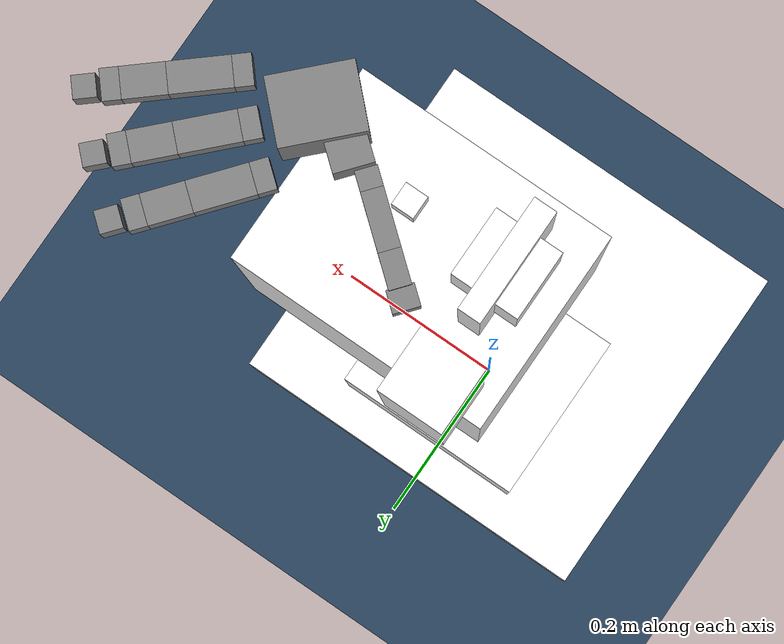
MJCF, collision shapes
<?xml version='1.0' encoding='utf-8'?>
<mujoco model="right_allegro_hand scene">
  <include file="franka_right_hand_box.xml" />

  <statistic center="0 0 0" extent="0.3" />

  <visual>
    <rgba haze="0.15 0.25 0.35 1" />
    <quality shadowsize="8192" />
    <global azimuth="130" elevation="-40" />

  </visual>

  <asset>
    <texture type="skybox" builtin="gradient" rgb1="0.3 0.5 0.7" rgb2="0 0 0" width="512" height="3072" />
    <texture type="2d" name="groundplane" builtin="checker" mark="edge" rgb1="0.2 0.3 0.4" rgb2="0.1 0.2 0.3" markrgb="0.8 0.8 0.8" width="300" height="300" />
    <material name="groundplane" texture="groundplane" texuniform="true" texrepeat="5 5" reflectance="0.2" />

    <texture name="grid" type="2d" builtin="checker" width="512" height="512" rgb1=".1 .2 .3" rgb2=".2 .3 .4"/>
    <material name="grid" texture="grid" texrepeat="1 1" texuniform="true" reflectance=".2"/>

    <mesh name="my_mesh" file="bluelego_convex.stl" scale="1 1 1" />
  </asset>

  <worldbody>
    <light pos="0 0 1" />
    <light pos="0.3 0 1.5" dir="0 0 -1" directional="true" />
    <camera name="top" focal="1.93e-3 1.93e-3" resolution="1280 720" sensorsize="3896e-6 2140e-6"
            pos="0 0 0.6" mode="fixed" quat="1 0 0 0"/>
        <camera name="side" focal="1.93e-3 1.93e-3" resolution="1280 720" sensorsize="3896e-6 2140e-6"
            pos="0 -0.5 0.1" mode="fixed" quat="0.7 0.7 0 0"/>
    <geom name="floor" pos="0 0 0.05" size="0 0 0.05" type="plane" material="grid"  condim="3"/>

  </worldbody>

</mujoco>

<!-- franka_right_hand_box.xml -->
<mujoco model="franka_allegro">
  <compiler angle="radian" meshdir="assets" autolimits="true"/>
  <option integrator="implicitfast"/>

  <default>
    <default class="panda">
      <material specular="0.5" shininess="0.25"/>
      <joint armature="0.1" damping="1" axis="0 0 1" range="-2.8973 2.8973" type="hinge"/>
      <general dyntype="none" biastype="affine" ctrlrange="-2.8973 2.8973" forcerange="-87 87"/>

      <default class="panda/visual">
        <geom type="mesh" contype="0" conaffinity="0" group="2"/>
      </default>

      <!-- Here we define per-link defaults, like in Allegro. -->

   <default class="panda/collision">
        <geom type="box" group="3" material="white"/>

        <default class="link0_collision">
          <geom size="0.10 0.10 0.04" pos="-0.045 0 0.0" />
        </default>

        <default class="link1_collision">
          <geom size="0.2 0.19 0.04" pos="0 -0.03 -0.06"/>
        </default>

        <default class="link2_collision">
          <geom size="0.1 0.05 0.09" pos="0 -0.04 0.03"/>
        </default>

        <default class="link3_collision">
          <geom size="0.03 0.03 0.03" pos="0 0 0"/>
        </default>

        <default class="link4_collision">
          <geom size="0.13 0.13 0.1" pos="0 0 0"/>
        </default>

        <!-- Link5 may have multiple collision boxes -->
        <default class="link5_0_collision">
          <geom size="0.03 0.03 0.1" pos="0 0.1 -0.13"/>
        </default>
        <default class="link5_1_collision">
          <geom size="0.01 0.05 0.05" pos="0 0 0.0"/>
        </default>
        <default class="link5_2_collision">
          <geom size="0.01 0.01 0.01" pos="0 0 0"/>
        </default>

        <default class="link6_collision">
          <geom size="0.03 0.03 0.03" pos="0 0 0"/>
        </default>

        <default class="link7_collision">
          <geom size="0.01 0.01 0.01" pos="0 0 0"/>
        </default>
      </default>

      <site size="0.001" rgba="0.5 0.5 0.5 0.3" group="4"/>

    </default>

    <!-- Allegro right hand defaults remain the same. -->
    <default class="allegro_right">
      <joint armature="0.1" damping="1" axis="0 0 1" range="-2.8973 2.8973" type="hinge"/>
      <position kp="1"/>
      <geom density="800"/>

      <default class="visual">
        <geom type="mesh" contype="0" conaffinity="0" group="2" material="black"/>
        <default class="palm_visual">
          <geom mesh="base_link"/>
        </default>
        <default class="base_visual">
          <geom mesh="link_0.0"/>
        </default>
        <default class="proximal_visual">
          <geom mesh="link_1.0"/>
        </default>
        <default class="medial_visual">
          <geom mesh="link_2.0"/>
        </default>
        <default class="distal_visual">
          <geom mesh="link_3.0"/>
        </default>
        <default class="fingertip_visual">
          <geom pos="0 0 0.0267" material="white" mesh="link_3.0_tip"/>
        </default>
        <default class="thumbtip_visual">
          <geom pos="0 0 0.0423" material="white" mesh="link_15.0_tip"/>
        </default>
      </default>

      <default class="collision">
        <geom group="3" type="box" mass="0.05"/>

        <default class="palm_collision">
          <geom size="0.0304 0.03 0.0375" pos="-0.0093 0 -0.0475"/>
        </default>
        <default class="base_collision">
          <geom size="0.0098 0.01375 0.0082" pos="0 0 0.0082"/>
          <default class="thumb_base_collision">
            <geom size="0.0179 0.017 0.02275" pos="-0.0179 0.009 0.0145"/>
          </default>
        </default>
        <default class="proximal_collision">
          <geom size="0.0098 0.01375 0.027" pos="0 0 0.027"/>
          <default class="thumb_proximal_collision">
            <geom size="0.0098 0.01375 0.00885" pos="0 0 0.00885"/>
          </default>
        </default>
        <default class="medial_collision">
          <geom size="0.0098 0.01375 0.0192" pos="0 0 0.0192"/>
          <default class="thumb_medial_collision">
            <geom size="0.0098 0.01375 0.0257" pos="0 0 0.0257"/>
          </default>
        </default>
        <default class="distal_collision">
          <geom size="0.0098 0.01375 0.008" pos="0 0 0.008"/>
          <default class="thumb_distal_collision">
            <geom size="0.0098 0.01375 0.0157" pos="0 0 0.0157"/>
          </default>
        </default>
        <default class="fingertip_collision">
          <geom  size="0.012 0.01 0.01" pos="0 0 0.029"/>
          <default class="thumbtip_collision">
            <geom  size="0.012 0.01 0.01" pos="0 0 0.04"/>
          </default>
        </default>
      </default>

      <default class="base">

        <joint  range="-0.47 0.47" armature="0.1" damping="1" type="hinge"/>
        <position ctrlrange="-0.47 0.47"/>
      </default>
      <default class="proximal">
        <joint range="-0.196 1.61" armature="0.1" damping="1" type="hinge"/>
        <position ctrlrange="-0.196 1.61"/>
      </default>
      <default class="medial">
        <joint range="-0.174 1.709" armature="0.1" damping="1" type="hinge"/>
        <position ctrlrange="-0.174 1.709"/>
      </default>
      <default class="distal">
        <joint range="-0.227 1.618"   armature="0.1" damping="1" type="hinge"/>
        <position ctrlrange="-0.227 1.618"/>
      </default>
      <default class="thumb_base">
        <joint axis="-1 0 0" range="0.263 1.396"  armature="0.1" damping="1" type="hinge"/>
        <position ctrlrange="0.263 1.396"/>
      </default>
      <default class="thumb_proximal">
        <joint axis="0 0 1" range="-0.105 1.163"   armature="0.1" damping="1" type="hinge"/>
        <position ctrlrange="-0.105 1.163"/>
      </default>
      <default class="thumb_medial">
        <joint range="-0.189 1.644"   armature="0.1" damping="1" type="hinge"/>
        <position ctrlrange="-0.189 1.644"/>
      </default>
      <default class="thumb_distal">
        <joint range="-0.162 1.719"  armature="0.1" damping="1" type="hinge"/>
        <position ctrlrange="-0.162 1.719"/>
      </default>
    </default>
  </default>

  <asset>
    <!-- Materials -->
    <material class="panda" name="white" rgba="1 1 1 1"/>
    <material class="panda" name="off_white" rgba="0.901961 0.921569 0.929412 1"/>
    <material class="panda" name="dark_grey" rgba="0.25 0.25 0.25 1"/>
    <material class="panda" name="green" rgba="0 1 0 1"/>
    <material class="panda" name="light_blue" rgba="0.039216 0.541176 0.780392 1"/>
    <material name="black" rgba="0.2 0.2 0.2 1"/>

    <!-- Collision meshes (no longer used, replaced by boxes) -->
    <mesh name="link0_c" file="link0.stl"/>
    <mesh name="link1_c" file="link1.stl"/>
    <mesh name="link2_c" file="link2.stl"/>
    <mesh name="link3_c" file="link3.stl"/>
    <mesh name="link4_c" file="link4.stl"/>
    <mesh name="link5_c0" file="link5_collision_0.obj"/>
    <mesh name="link5_c1" file="link5_collision_1.obj"/>
    <mesh name="link5_c2" file="link5_collision_2.obj"/>
    <mesh name="link6_c" file="link6.stl"/>
    <mesh name="link7_c" file="link7.stl"/>

    <!-- Visual meshes -->
    <mesh name="link0_0" file="link0_0.obj"/>
    <mesh name="link0_1" file="link0_1.obj"/>
    <mesh name="link0_2" file="link0_2.obj"/>
    <mesh name="link0_3" file="link0_3.obj"/>
    <mesh name="link0_4" file="link0_4.obj"/>
    <mesh name="link0_5" file="link0_5.obj"/>
    <mesh name="link0_7" file="link0_7.obj"/>
    <mesh name="link0_8" file="link0_8.obj"/>
    <mesh name="link0_9" file="link0_9.obj"/>
    <mesh name="link0_10" file="link0_10.obj"/>
    <mesh name="link0_11" file="link0_11.obj"/>
    <mesh name="link1" file="link1.obj"/>
    <mesh name="link2" file="link2.obj"/>
    <mesh name="link3_0" file="link3_0.obj"/>
    <mesh name="link3_1" file="link3_1.obj"/>
    <mesh name="link3_2" file="link3_2.obj"/>
    <mesh name="link3_3" file="link3_3.obj"/>
    <mesh name="link4_0" file="link4_0.obj"/>
    <mesh name="link4_1" file="link4_1.obj"/>
    <mesh name="link4_2" file="link4_2.obj"/>
    <mesh name="link4_3" file="link4_3.obj"/>
    <mesh name="link5_0" file="link5_0.obj"/>
    <mesh name="link5_1" file="link5_1.obj"/>
    <mesh name="link5_2" file="link5_2.obj"/>
    <mesh name="link6_0" file="link6_0.obj"/>
    <mesh name="link6_1" file="link6_1.obj"/>
    <mesh name="link6_2" file="link6_2.obj"/>
    <mesh name="link6_3" file="link6_3.obj"/>
    <mesh name="link6_4" file="link6_4.obj"/>
    <mesh name="link6_5" file="link6_5.obj"/>
    <mesh name="link6_6" file="link6_6.obj"/>
    <mesh name="link6_7" file="link6_7.obj"/>
    <mesh name="link6_8" file="link6_8.obj"/>
    <mesh name="link6_9" file="link6_9.obj"/>
    <mesh name="link6_10" file="link6_10.obj"/>
    <mesh name="link6_11" file="link6_11.obj"/>
    <mesh name="link6_12" file="link6_12.obj"/>
    <mesh name="link6_13" file="link6_13.obj"/>
    <mesh name="link6_14" file="link6_14.obj"/>
    <mesh name="link6_15" file="link6_15.obj"/>
    <mesh name="link6_16" file="link6_16.obj"/>
    <mesh name="link7_0" file="link7_0.obj"/>
    <mesh name="link7_1" file="link7_1.obj"/>
    <mesh name="link7_2" file="link7_2.obj"/>
    <mesh name="link7_3" file="link7_3.obj"/>
    <mesh name="link7_4" file="link7_4.obj"/>
    <mesh name="link7_5" file="link7_5.obj"/>
    <mesh name="link7_6" file="link7_6.obj"/>
    <mesh name="link7_7" file="link7_7.obj"/>

    <!-- Allegro hand meshes -->
    <mesh file="base_link.stl" name="base_link"/>
    <mesh file="hand_link_0.0.stl" name="link_0.0"/>
    <mesh file="hand_link_1.0.stl" name="link_1.0"/>
    <mesh file="hand_link_2.0.stl" name="link_2.0"/>
    <mesh file="hand_link_3.0.stl" name="link_3.0"/>
    <mesh file="hand_link_3.0_tip.stl" name="link_3.0_tip"/>
    <mesh file="hand_link_12.0_right.stl" name="link_12.0_right"/>
    <mesh file="hand_link_13.0.stl" name="link_13.0"/>
    <mesh file="hand_link_14.0.stl" name="link_14.0"/>
    <mesh file="hand_link_15.0.stl" name="link_15.0"/>
    <mesh file="hand_link_15.0_tip.stl" name="link_15.0_tip"/>
  </asset>

  <worldbody>
    <!-- Franka robot up to link7 -->
    <body name="link0" pos='0 0 0.05' childclass="panda">
      <inertial mass="0.629769" pos="-0.041018 -0.00014 0.049974"
                fullinertia="0.00315 0.00388 0.004285 8.2904e-7 0.00015 8.2299e-6"/>

      <!-- Visual geoms unchanged -->
      <geom mesh="link0_0" material="off_white" class="panda/visual"/>
      <geom mesh="link0_1" material="dark_grey" class="panda/visual"/>
      <geom mesh="link0_2" material="off_white" class="panda/visual"/>
      <geom mesh="link0_3" material="dark_grey" class="panda/visual"/>
      <geom mesh="link0_4" material="off_white" class="panda/visual"/>
      <geom mesh="link0_5" material="dark_grey" class="panda/visual"/>
      <geom mesh="link0_7" material="white" class="panda/visual"/>
      <geom mesh="link0_8" material="white" class="panda/visual"/>
      <geom mesh="link0_9" material="dark_grey" class="panda/visual"/>
      <geom mesh="link0_10" material="off_white" class="panda/visual"/>
      <geom mesh="link0_11" material="white" class="panda/visual"/>

      <!-- Collision now references link0_collision. -->
      <geom class="link0_collision"/>

      <body name="link1" pos="0 0 0.333">
        <inertial mass="4.970684" pos="0.003875 0.002081 -0.04762"
                  fullinertia="0.70337 0.70661 0.0091170 -0.00013900 0.0067720 0.019169"/>
        <joint name="joint1"/>

        <geom material="white" mesh="link1" class="panda/visual"/>
        <!-- Collision for link1 -->
        <geom class="link1_collision"/>

        <body name="link2" quat="1 -1 0 0">
          <inertial mass="0.646926" pos="-0.003141 -0.02872 0.003495"
                    fullinertia="0.0079620 2.8110e-2 2.5995e-2 -3.925e-3 1.0254e-2 7.04e-4"/>
          <joint name="joint2" range="-1.7628 1.7628"/>
          <geom material="white" mesh="link2" class="panda/visual"/>
          <geom class="link2_collision"/>

          <body name="link3" pos="0 -0.316 0" quat="1 1 0 0">
            <joint name="joint3"/>
            <inertial mass="3.228604" pos="2.7518e-2 3.9252e-2 -6.6502e-2"
                      fullinertia="3.7242e-2 3.6155e-2 1.083e-2 -4.761e-3 -1.1396e-2 -1.2805e-2"/>
            <geom mesh="link3_0" material="white" class="panda/visual"/>
            <geom mesh="link3_1" material="white" class="panda/visual"/>
            <geom mesh="link3_2" material="white" class="panda/visual"/>
            <geom mesh="link3_3" material="dark_grey" class="panda/visual"/>
            <geom class="link3_collision"/>

            <body name="link4" pos="0.0825 0 0" quat="1 1 0 0">
              <inertial mass="3.587895" pos="-5.317e-2 1.04419e-1 2.7454e-2"
                        fullinertia="2.5853e-2 1.9552e-2 2.8323e-2 7.796e-3 -1.332e-3 8.641e-3"/>
              <joint name="joint4" range="-3.0718 -0.0698"/>
              <geom mesh="link4_0" material="white" class="panda/visual"/>
              <geom mesh="link4_1" material="white" class="panda/visual"/>
              <geom mesh="link4_2" material="dark_grey" class="panda/visual"/>
              <geom mesh="link4_3" material="white" class="panda/visual"/>
              <geom class="link4_collision"/>

              <body name="link5" pos="-0.0825 0.384 0" quat="1 -1 0 0">
                <inertial mass="1.225946" pos="-1.1953e-2 4.1065e-2 -3.8437e-2"
                          fullinertia="3.5549e-2 2.9474e-2 8.627e-3 -2.117e-3 -4.037e-3 2.29e-4"/>
                <joint name="joint5"/>

                <!-- Visual -->
                <geom mesh="link5_0" material="dark_grey" class="panda/visual"/>
                <geom mesh="link5_1" material="white" class="panda/visual"/>
                <geom mesh="link5_2" material="white" class="panda/visual"/>

                <!-- Instead of three repeated geoms, each references its own default -->
                <geom class="link5_0_collision"/>
                <geom class="link5_1_collision"/>
                <geom class="link5_2_collision"/>

                <body name="link6" quat="1 1 0 0">
                  <inertial mass="1.666555" pos="6.0149e-2 -1.4117e-2 -1.0517e-2"
                            fullinertia="1.964e-3 4.354e-3 5.433e-3 1.09e-4 -1.158e-3 3.41e-4"/>
                  <joint name="joint6" range="-0.0175 3.7525"/>

                  <!-- Visual geoms -->
                  <geom mesh="link6_0" material="off_white" class="panda/visual"/>
                  <geom mesh="link6_1" material="white" class="panda/visual"/>
                  <geom mesh="link6_2" material="dark_grey" class="panda/visual"/>
                  <geom mesh="link6_3" material="white" class="panda/visual"/>
                  <geom mesh="link6_4" material="white" class="panda/visual"/>
                  <geom mesh="link6_5" material="white" class="panda/visual"/>
                  <geom mesh="link6_6" material="white" class="panda/visual"/>
                  <geom mesh="link6_7" material="light_blue" class="panda/visual"/>
                  <geom mesh="link6_8" material="light_blue" class="panda/visual"/>
                  <geom mesh="link6_9" material="dark_grey" class="panda/visual"/>
                  <geom mesh="link6_10" material="dark_grey" class="panda/visual"/>
                  <geom mesh="link6_11" material="white" class="panda/visual"/>
                  <geom mesh="link6_12" material="green" class="panda/visual"/>
                  <geom mesh="link6_13" material="white" class="panda/visual"/>
                  <geom mesh="link6_14" material="dark_grey" class="panda/visual"/>
                  <geom mesh="link6_15" material="dark_grey" class="panda/visual"/>
                  <geom mesh="link6_16" material="white" class="panda/visual"/>

                  <!-- Collision for link6 -->
                  <geom class="link6_collision"/>

                  <body name="link7" pos="0.088 0 0" quat="1 1 0 0">
                    <inertial mass="0.735522"
                              pos="0.010517 -0.004252 0.061597"
                              fullinertia="0.012516 0.010027 0.004815 -0.000428 -0.001196 -0.000741"/>
                    <joint name="joint7"/>
                    <geom mesh="link7_0" material="white" class="panda/visual"/>
                    <geom mesh="link7_1" material="dark_grey" class="panda/visual"/>
                    <geom mesh="link7_2" material="dark_grey" class="panda/visual"/>
                    <geom mesh="link7_3" material="dark_grey" class="panda/visual"/>
                    <geom mesh="link7_4" material="dark_grey" class="panda/visual"/>
                    <geom mesh="link7_5" material="dark_grey" class="panda/visual"/>
                    <geom mesh="link7_6" material="dark_grey" class="panda/visual"/>
                    <geom mesh="link7_7" material="white" class="panda/visual"/>
                    <geom class="link7_collision"/>

                    <!-- Allegro hand as child of link7 -->
                    <body name="allegro_hand"
                          pos="0.15 0.0 0.14"
                          quat="-0.27328151 -0.65059802 0.27328151 -0.65059802"
                          childclass="allegro_right">
                      <geom class="palm_visual" mesh="base_link"/>
                      <geom class="palm_collision"/>

                      <!-- FF Finger -->
                      <body name="ff_base" pos="0 0.0435 -0.001542" quat="0.999048 -0.0436194 0 0">
                        <joint name="ffj0" class="base" />
                        <geom class="base_visual" />
                        <geom class="base_collision" />
                        <body name="ff_proximal" pos="0 0 0.0164">
                          <joint name="ffj1" class="proximal" />
                          <geom class="proximal_visual" />
                          <geom class="proximal_collision" />
                          <body name="ff_medial" pos="0 0 0.054">
                            <joint name="ffj2" class="medial" />
                            <geom class="medial_visual" />
                            <geom class="medial_collision" />
                            <body name="ff_distal" pos="0 0 0.0384">
                              <joint name="ffj3" class="distal" />
                              <geom class="distal_visual" />
                              <geom class="distal_collision" />
                              <body name="ff_tip">
                                <geom class="fingertip_visual" />
                                <geom class="fingertip_collision" />
                              </body>
                            </body>
                          </body>
                        </body>
                      </body>

                      <!-- MF Finger -->
                      <body name="mf_base" pos="0 0 0.0007">
                        <joint name="mfj0" class="base" />
                        <geom class="base_visual" />
                        <geom class="base_collision" />
                        <body name="mf_proximal" pos="0 0 0.0164">
                          <joint name="mfj1" class="proximal" />
                          <geom class="proximal_visual" />
                          <geom class="proximal_collision" />
                          <body name="mf_medial" pos="0 0 0.054">
                            <joint name="mfj2" class="medial" />
                            <geom class="medial_visual" />
                            <geom class="medial_collision" />
                            <body name="mf_distal" pos="0 0 0.0384">
                              <joint name="mfj3" class="distal" />
                              <geom class="distal_visual" />
                              <geom class="distal_collision" />
                              <body name="mf_tip">
                                <geom class="fingertip_visual" />
                                <geom class="fingertip_collision" />
                              </body>
                            </body>
                          </body>
                        </body>
                      </body>

                      <!-- RF Finger -->
                      <body name="rf_base" pos="0 -0.0435 -0.001542" quat="0.999048 0.0436194 0 0">
                        <joint name="rfj0" class="base" />
                        <geom class="base_visual" />
                        <geom class="base_collision" />
                        <body name="rf_proximal" pos="0 0 0.0164">
                          <joint name="rfj1" class="proximal" />
                          <geom class="proximal_visual" />
                          <geom class="proximal_collision" />
                          <body name="rf_medial" pos="0 0 0.054">
                            <joint name="rfj2" class="medial" />
                            <geom class="medial_visual" />
                            <geom class="medial_collision" />
                            <body name="rf_distal" pos="0 0 0.0384">
                              <joint name="rfj3" class="distal" />
                              <geom class="distal_visual" />
                              <geom class="distal_collision" />
                              <body name="rf_tip">
                                <geom class="fingertip_visual" />
                                <geom class="fingertip_collision" />
                              </body>
                            </body>
                          </body>
                        </body>
                      </body>

                      <!-- Thumb Finger -->
                      <body name="th_base" pos="-0.0182 0.019333 -0.045987" quat="0.477714 -0.521334 -0.521334 -0.477714">
                        <joint name="thj0" class="thumb_base" />
                        <geom class="visual" mesh="link_12.0_right" />
                        <geom class="thumb_base_collision" />
                        <body name="th_proximal" pos="-0.027 0.005 0.0399">
                          <joint name="thj1" class="thumb_proximal" />
                          <geom class="visual" mesh="link_13.0" />
                          <geom class="thumb_proximal_collision" />
                          <body name="th_medial" pos="0 0 0.0177">
                            <joint name="thj2" class="thumb_medial" />
                            <geom class="visual" mesh="link_14.0" />
                            <geom class="thumb_medial_collision" />
                            <body name="th_distal" pos="0 0 0.0514">
                              <joint name="thj3" class="thumb_distal" />
                              <geom class="visual" mesh="link_15.0" />
                              <geom class="thumb_distal_collision" />
                              <body name="th_tip">
                                <geom class="thumbtip_visual" />
                                <geom class="thumbtip_collision" />
                              </body>
                            </body>
                          </body>
                        </body>
                      </body>
                    </body><!-- /allegro_hand -->
                  </body><!-- /link7 -->
                </body><!-- /link6 -->
              </body><!-- /link5 -->
            </body><!-- /link4 -->
          </body><!-- /link3 -->
        </body><!-- /link2 -->
      </body><!-- /link1 -->
    </body><!-- /link0 -->

  </worldbody>

  <actuator>
    <general class="panda" name="actuator1" joint="joint1" gainprm="4500" biasprm="0 -4500 -450"/>
    <general class="panda" name="actuator2" joint="joint2" gainprm="4500" biasprm="0 -4500 -450"
      ctrlrange="-1.7628 1.7628"/>
    <general class="panda" name="actuator3" joint="joint3" gainprm="3500" biasprm="0 -3500 -350"/>
    <general class="panda" name="actuator4" joint="joint4" gainprm="3500" biasprm="0 -3500 -350"
      ctrlrange="-3.0718 -0.0698"/>
    <general class="panda" name="actuator5" joint="joint5" gainprm="2000" biasprm="0 -2000 -200" forcerange="-12 12"/>
    <general class="panda" name="actuator6" joint="joint6" gainprm="2000" biasprm="0 -2000 -200" forcerange="-12 12"
      ctrlrange="-0.0175 3.7525"/>
    <general class="panda" name="actuator7" joint="joint7" gainprm="2000" biasprm="0 -2000 -200" forcerange="-12 12"/>

    <position name="ffa0" joint="ffj0" class="base" />
    <position name="ffa1" joint="ffj1" class="proximal" />
    <position name="ffa2" joint="ffj2" class="medial" />
    <position name="ffa3" joint="ffj3" class="distal" />

    <position name="mfa0" joint="mfj0" class="base" />
    <position name="mfa1" joint="mfj1" class="proximal" />
    <position name="mfa2" joint="mfj2" class="medial" />
    <position name="mfa3" joint="mfj3" class="distal" />

    <position name="rfa0" joint="rfj0" class="base" />
    <position name="rfa1" joint="rfj1" class="proximal" />
    <position name="rfa2" joint="rfj2" class="medial" />
    <position name="rfa3" joint="rfj3" class="distal" />

    <position name="tha0" joint="thj0" class="thumb_base" />
    <position name="tha1" joint="thj1" class="thumb_proximal" />
    <position name="tha2" joint="thj2" class="thumb_medial" />
    <position name="tha3" joint="thj3" class="thumb_distal" />
  </actuator>
</mujoco>
